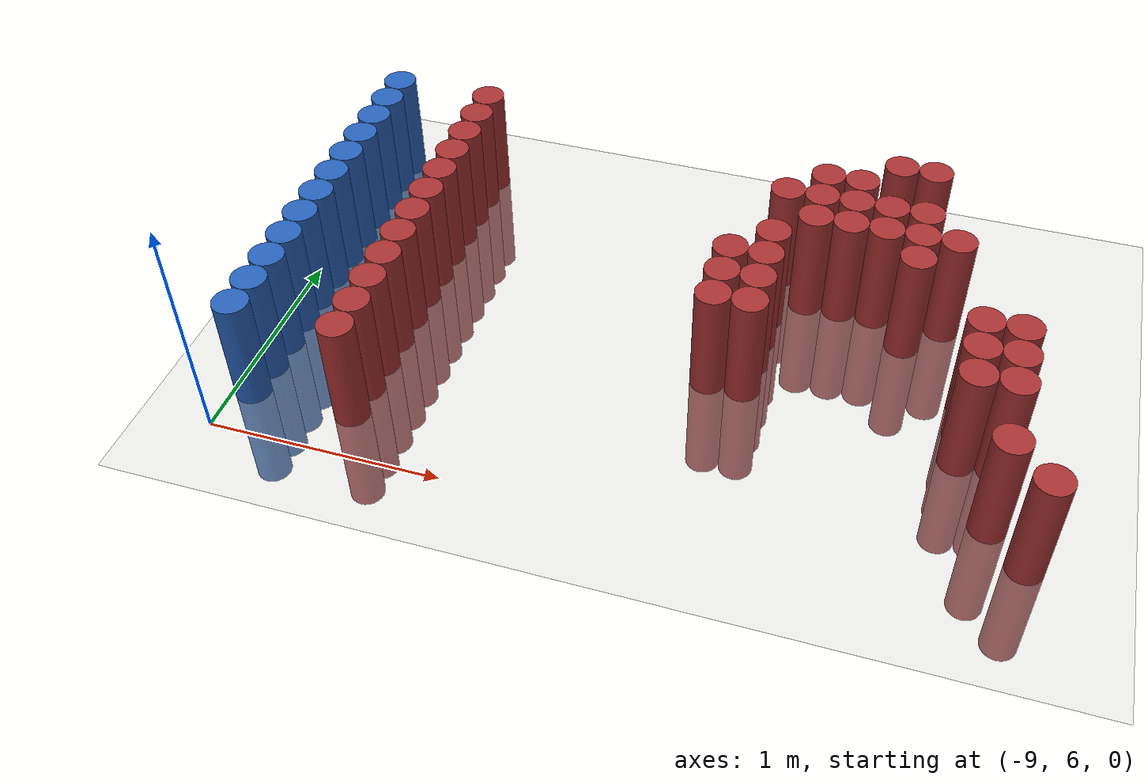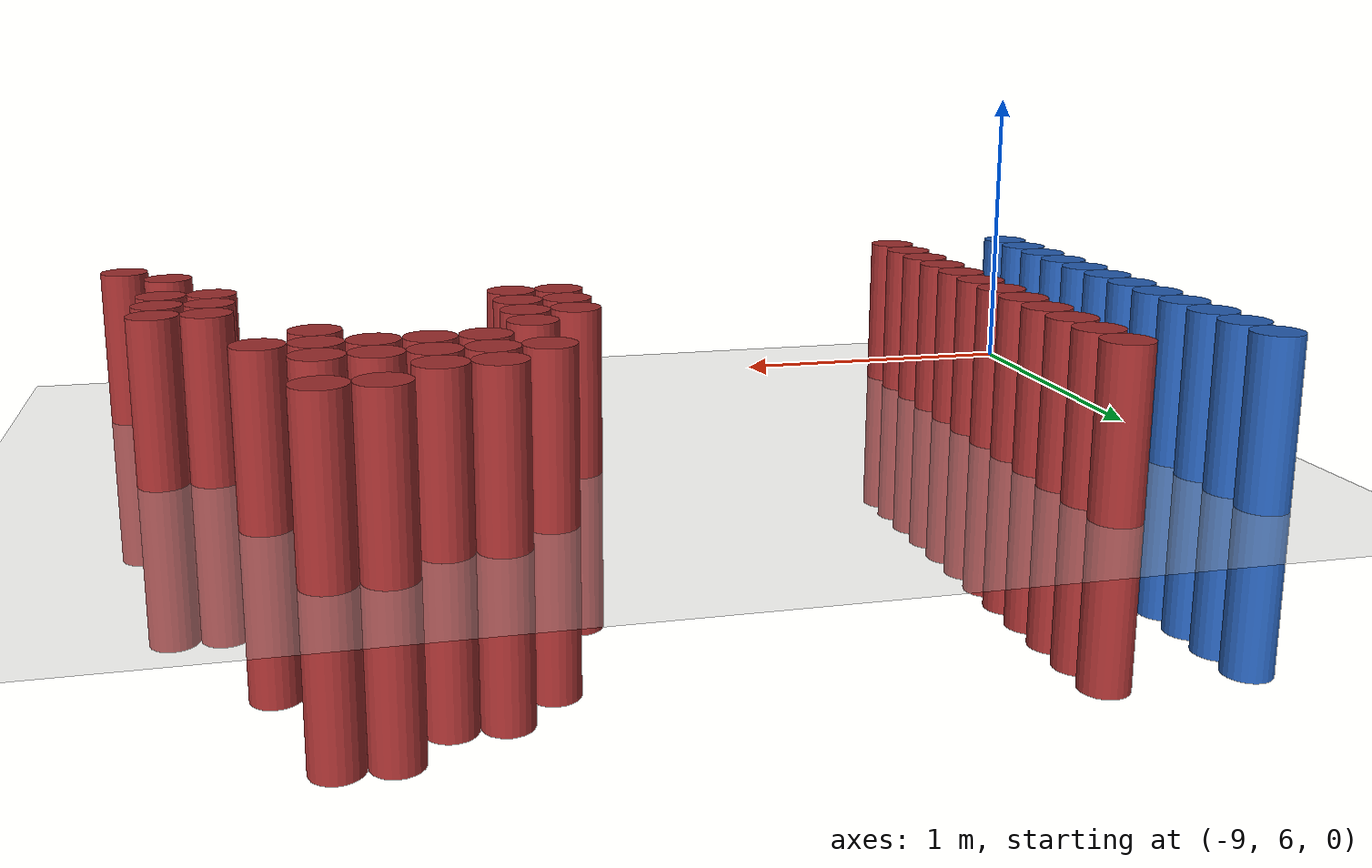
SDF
<sdf version="1.6">
 <world name="default">
  <model name="ground_plane">
   <static>1</static>
   <link name="link">
    <collision name="collision">
     <geometry><plane><normal>0 0 1</normal><size>100 100</size></plane></geometry>
     <surface><friction><ode><mu>100</mu><mu2>50</mu2></ode></friction></surface>
    </collision>
    <visual name="visual">
     <cast_shadows>0</cast_shadows>
     <geometry><plane><normal>0 0 1</normal><size>100 100</size></plane></geometry>
     <material>
      <script><uri>file://media/materials/scripts/gazebo.material</uri><name>Gazebo/Grey</name></script>
     </material>
    </visual>
   </link>
  </model>
  <model name="unit_cylinder_132">
   <static>1</static>
   <pose>-8.925000 6.225000 0.000000 0.000000 0.000000 0.000000</pose>
   <link name="link">
    <inertial>
     <mass>1</mass>
     <inertia><ixx>0.145833</ixx><ixy>0</ixy><ixz>0</ixz><iyy>0.145833</iyy><iyz>0</iyz><izz>0.125</izz></inertia>
    </inertial>
    <collision name="collision">
     <geometry><cylinder><radius>0.075000</radius><length>1</length></cylinder></geometry>
    </collision>
    <visual name="visual">
     <geometry><cylinder><radius>0.075000</radius><length>1</length></cylinder></geometry>
     <material>
      <ambient>0.152000 0.379000 0.720000 1</ambient>
      <diffuse>0.152000 0.379000 0.720000 1</diffuse>
     </material>
     <material>
      <script><name>Gazebo/Grey</name><uri>file://media/materials/scripts/gazebo.material</uri></script>
     </material>
    </visual>
   </link>
  </model>
  <model name="unit_cylinder_133">
   <static>1</static>
   <pose>-8.925000 6.375000 0.000000 0.000000 0.000000 0.000000</pose>
   <link name="link">
    <inertial>
     <mass>1</mass>
     <inertia><ixx>0.145833</ixx><ixy>0</ixy><ixz>0</ixz><iyy>0.145833</iyy><iyz>0</iyz><izz>0.125</izz></inertia>
    </inertial>
    <collision name="collision">
     <geometry><cylinder><radius>0.075000</radius><length>1</length></cylinder></geometry>
    </collision>
    <visual name="visual">
     <geometry><cylinder><radius>0.075000</radius><length>1</length></cylinder></geometry>
     <material>
      <ambient>0.152000 0.379000 0.720000 1</ambient>
      <diffuse>0.152000 0.379000 0.720000 1</diffuse>
     </material>
     <material>
      <script><name>Gazebo/Grey</name><uri>file://media/materials/scripts/gazebo.material</uri></script>
     </material>
    </visual>
   </link>
  </model>
  <model name="unit_cylinder_134">
   <static>1</static>
   <pose>-8.925000 6.525000 0.000000 0.000000 0.000000 0.000000</pose>
   <link name="link">
    <inertial>
     <mass>1</mass>
     <inertia><ixx>0.145833</ixx><ixy>0</ixy><ixz>0</ixz><iyy>0.145833</iyy><iyz>0</iyz><izz>0.125</izz></inertia>
    </inertial>
    <collision name="collision">
     <geometry><cylinder><radius>0.075000</radius><length>1</length></cylinder></geometry>
    </collision>
    <visual name="visual">
     <geometry><cylinder><radius>0.075000</radius><length>1</length></cylinder></geometry>
     <material>
      <ambient>0.152000 0.379000 0.720000 1</ambient>
      <diffuse>0.152000 0.379000 0.720000 1</diffuse>
     </material>
     <material>
      <script><name>Gazebo/Grey</name><uri>file://media/materials/scripts/gazebo.material</uri></script>
     </material>
    </visual>
   </link>
  </model>
  <model name="unit_cylinder_135">
   <static>1</static>
   <pose>-8.925000 6.675000 0.000000 0.000000 0.000000 0.000000</pose>
   <link name="link">
    <inertial>
     <mass>1</mass>
     <inertia><ixx>0.145833</ixx><ixy>0</ixy><ixz>0</ixz><iyy>0.145833</iyy><iyz>0</iyz><izz>0.125</izz></inertia>
    </inertial>
    <collision name="collision">
     <geometry><cylinder><radius>0.075000</radius><length>1</length></cylinder></geometry>
    </collision>
    <visual name="visual">
     <geometry><cylinder><radius>0.075000</radius><length>1</length></cylinder></geometry>
     <material>
      <ambient>0.152000 0.379000 0.720000 1</ambient>
      <diffuse>0.152000 0.379000 0.720000 1</diffuse>
     </material>
     <material>
      <script><name>Gazebo/Grey</name><uri>file://media/materials/scripts/gazebo.material</uri></script>
     </material>
    </visual>
   </link>
  </model>
  <model name="unit_cylinder_136">
   <static>1</static>
   <pose>-8.925000 6.825000 0.000000 0.000000 0.000000 0.000000</pose>
   <link name="link">
    <inertial>
     <mass>1</mass>
     <inertia><ixx>0.145833</ixx><ixy>0</ixy><ixz>0</ixz><iyy>0.145833</iyy><iyz>0</iyz><izz>0.125</izz></inertia>
    </inertial>
    <collision name="collision">
     <geometry><cylinder><radius>0.075000</radius><length>1</length></cylinder></geometry>
    </collision>
    <visual name="visual">
     <geometry><cylinder><radius>0.075000</radius><length>1</length></cylinder></geometry>
     <material>
      <ambient>0.152000 0.379000 0.720000 1</ambient>
      <diffuse>0.152000 0.379000 0.720000 1</diffuse>
     </material>
     <material>
      <script><name>Gazebo/Grey</name><uri>file://media/materials/scripts/gazebo.material</uri></script>
     </material>
    </visual>
   </link>
  </model>
  <model name="unit_cylinder_137">
   <static>1</static>
   <pose>-8.925000 6.975000 0.000000 0.000000 0.000000 0.000000</pose>
   <link name="link">
    <inertial>
     <mass>1</mass>
     <inertia><ixx>0.145833</ixx><ixy>0</ixy><ixz>0</ixz><iyy>0.145833</iyy><iyz>0</iyz><izz>0.125</izz></inertia>
    </inertial>
    <collision name="collision">
     <geometry><cylinder><radius>0.075000</radius><length>1</length></cylinder></geometry>
    </collision>
    <visual name="visual">
     <geometry><cylinder><radius>0.075000</radius><length>1</length></cylinder></geometry>
     <material>
      <ambient>0.152000 0.379000 0.720000 1</ambient>
      <diffuse>0.152000 0.379000 0.720000 1</diffuse>
     </material>
     <material>
      <script><name>Gazebo/Grey</name><uri>file://media/materials/scripts/gazebo.material</uri></script>
     </material>
    </visual>
   </link>
  </model>
  <model name="unit_cylinder_138">
   <static>1</static>
   <pose>-8.925000 7.125000 0.000000 0.000000 0.000000 0.000000</pose>
   <link name="link">
    <inertial>
     <mass>1</mass>
     <inertia><ixx>0.145833</ixx><ixy>0</ixy><ixz>0</ixz><iyy>0.145833</iyy><iyz>0</iyz><izz>0.125</izz></inertia>
    </inertial>
    <collision name="collision">
     <geometry><cylinder><radius>0.075000</radius><length>1</length></cylinder></geometry>
    </collision>
    <visual name="visual">
     <geometry><cylinder><radius>0.075000</radius><length>1</length></cylinder></geometry>
     <material>
      <ambient>0.152000 0.379000 0.720000 1</ambient>
      <diffuse>0.152000 0.379000 0.720000 1</diffuse>
     </material>
     <material>
      <script><name>Gazebo/Grey</name><uri>file://media/materials/scripts/gazebo.material</uri></script>
     </material>
    </visual>
   </link>
  </model>
  <model name="unit_cylinder_139">
   <static>1</static>
   <pose>-8.925000 7.275000 0.000000 0.000000 0.000000 0.000000</pose>
   <link name="link">
    <inertial>
     <mass>1</mass>
     <inertia><ixx>0.145833</ixx><ixy>0</ixy><ixz>0</ixz><iyy>0.145833</iyy><iyz>0</iyz><izz>0.125</izz></inertia>
    </inertial>
    <collision name="collision">
     <geometry><cylinder><radius>0.075000</radius><length>1</length></cylinder></geometry>
    </collision>
    <visual name="visual">
     <geometry><cylinder><radius>0.075000</radius><length>1</length></cylinder></geometry>
     <material>
      <ambient>0.152000 0.379000 0.720000 1</ambient>
      <diffuse>0.152000 0.379000 0.720000 1</diffuse>
     </material>
     <material>
      <script><name>Gazebo/Grey</name><uri>file://media/materials/scripts/gazebo.material</uri></script>
     </material>
    </visual>
   </link>
  </model>
  <model name="unit_cylinder_140">
   <static>1</static>
   <pose>-8.925000 7.425000 0.000000 0.000000 0.000000 0.000000</pose>
   <link name="link">
    <inertial>
     <mass>1</mass>
     <inertia><ixx>0.145833</ixx><ixy>0</ixy><ixz>0</ixz><iyy>0.145833</iyy><iyz>0</iyz><izz>0.125</izz></inertia>
    </inertial>
    <collision name="collision">
     <geometry><cylinder><radius>0.075000</radius><length>1</length></cylinder></geometry>
    </collision>
    <visual name="visual">
     <geometry><cylinder><radius>0.075000</radius><length>1</length></cylinder></geometry>
     <material>
      <ambient>0.152000 0.379000 0.720000 1</ambient>
      <diffuse>0.152000 0.379000 0.720000 1</diffuse>
     </material>
     <material>
      <script><name>Gazebo/Grey</name><uri>file://media/materials/scripts/gazebo.material</uri></script>
     </material>
    </visual>
   </link>
  </model>
  <model name="unit_cylinder_141">
   <static>1</static>
   <pose>-8.925000 7.575000 0.000000 0.000000 0.000000 0.000000</pose>
   <link name="link">
    <inertial>
     <mass>1</mass>
     <inertia><ixx>0.145833</ixx><ixy>0</ixy><ixz>0</ixz><iyy>0.145833</iyy><iyz>0</iyz><izz>0.125</izz></inertia>
    </inertial>
    <collision name="collision">
     <geometry><cylinder><radius>0.075000</radius><length>1</length></cylinder></geometry>
    </collision>
    <visual name="visual">
     <geometry><cylinder><radius>0.075000</radius><length>1</length></cylinder></geometry>
     <material>
      <ambient>0.152000 0.379000 0.720000 1</ambient>
      <diffuse>0.152000 0.379000 0.720000 1</diffuse>
     </material>
     <material>
      <script><name>Gazebo/Grey</name><uri>file://media/materials/scripts/gazebo.material</uri></script>
     </material>
    </visual>
   </link>
  </model>
  <model name="unit_cylinder_142">
   <static>1</static>
   <pose>-8.925000 7.725000 0.000000 0.000000 0.000000 0.000000</pose>
   <link name="link">
    <inertial>
     <mass>1</mass>
     <inertia><ixx>0.145833</ixx><ixy>0</ixy><ixz>0</ixz><iyy>0.145833</iyy><iyz>0</iyz><izz>0.125</izz></inertia>
    </inertial>
    <collision name="collision">
     <geometry><cylinder><radius>0.075000</radius><length>1</length></cylinder></geometry>
    </collision>
    <visual name="visual">
     <geometry><cylinder><radius>0.075000</radius><length>1</length></cylinder></geometry>
     <material>
      <ambient>0.152000 0.379000 0.720000 1</ambient>
      <diffuse>0.152000 0.379000 0.720000 1</diffuse>
     </material>
     <material>
      <script><name>Gazebo/Grey</name><uri>file://media/materials/scripts/gazebo.material</uri></script>
     </material>
    </visual>
   </link>
  </model>
  <model name="unit_cylinder_143">
   <static>1</static>
   <pose>-8.925000 7.875000 0.000000 0.000000 0.000000 0.000000</pose>
   <link name="link">
    <inertial>
     <mass>1</mass>
     <inertia><ixx>0.145833</ixx><ixy>0</ixy><ixz>0</ixz><iyy>0.145833</iyy><iyz>0</iyz><izz>0.125</izz></inertia>
    </inertial>
    <collision name="collision">
     <geometry><cylinder><radius>0.075000</radius><length>1</length></cylinder></geometry>
    </collision>
    <visual name="visual">
     <geometry><cylinder><radius>0.075000</radius><length>1</length></cylinder></geometry>
     <material>
      <ambient>0.152000 0.379000 0.720000 1</ambient>
      <diffuse>0.152000 0.379000 0.720000 1</diffuse>
     </material>
     <material>
      <script><name>Gazebo/Grey</name><uri>file://media/materials/scripts/gazebo.material</uri></script>
     </material>
    </visual>
   </link>
  </model>
  <model name="unit_cylinder_165">
   <static>1</static>
   <pose>-8.475000 6.225000 0.000000 0.000000 0.000000 0.000000</pose>
   <link name="link">
    <inertial>
     <mass>1</mass>
     <inertia><ixx>0.145833</ixx><ixy>0</ixy><ixz>0</ixz><iyy>0.145833</iyy><iyz>0</iyz><izz>0.125</izz></inertia>
    </inertial>
    <collision name="collision">
     <geometry><cylinder><radius>0.075000</radius><length>1</length></cylinder></geometry>
    </collision>
    <visual name="visual">
     <geometry><cylinder><radius>0.075000</radius><length>1</length></cylinder></geometry>
     <material>
      <ambient>0.648000 0.192000 0.192000 1</ambient>
      <diffuse>0.648000 0.192000 0.192000 1</diffuse>
     </material>
     <material>
      <script><name>Gazebo/Grey</name><uri>file://media/materials/scripts/gazebo.material</uri></script>
     </material>
    </visual>
   </link>
  </model>
  <model name="unit_cylinder_166">
   <static>1</static>
   <pose>-8.475000 6.375000 0.000000 0.000000 0.000000 0.000000</pose>
   <link name="link">
    <inertial>
     <mass>1</mass>
     <inertia><ixx>0.145833</ixx><ixy>0</ixy><ixz>0</ixz><iyy>0.145833</iyy><iyz>0</iyz><izz>0.125</izz></inertia>
    </inertial>
    <collision name="collision">
     <geometry><cylinder><radius>0.075000</radius><length>1</length></cylinder></geometry>
    </collision>
    <visual name="visual">
     <geometry><cylinder><radius>0.075000</radius><length>1</length></cylinder></geometry>
     <material>
      <ambient>0.648000 0.192000 0.192000 1</ambient>
      <diffuse>0.648000 0.192000 0.192000 1</diffuse>
     </material>
     <material>
      <script><name>Gazebo/Grey</name><uri>file://media/materials/scripts/gazebo.material</uri></script>
     </material>
    </visual>
   </link>
  </model>
  <model name="unit_cylinder_167">
   <static>1</static>
   <pose>-8.475000 6.525000 0.000000 0.000000 0.000000 0.000000</pose>
   <link name="link">
    <inertial>
     <mass>1</mass>
     <inertia><ixx>0.145833</ixx><ixy>0</ixy><ixz>0</ixz><iyy>0.145833</iyy><iyz>0</iyz><izz>0.125</izz></inertia>
    </inertial>
    <collision name="collision">
     <geometry><cylinder><radius>0.075000</radius><length>1</length></cylinder></geometry>
    </collision>
    <visual name="visual">
     <geometry><cylinder><radius>0.075000</radius><length>1</length></cylinder></geometry>
     <material>
      <ambient>0.648000 0.192000 0.192000 1</ambient>
      <diffuse>0.648000 0.192000 0.192000 1</diffuse>
     </material>
     <material>
      <script><name>Gazebo/Grey</name><uri>file://media/materials/scripts/gazebo.material</uri></script>
     </material>
    </visual>
   </link>
  </model>
  <model name="unit_cylinder_168">
   <static>1</static>
   <pose>-8.475000 6.675000 0.000000 0.000000 0.000000 0.000000</pose>
   <link name="link">
    <inertial>
     <mass>1</mass>
     <inertia><ixx>0.145833</ixx><ixy>0</ixy><ixz>0</ixz><iyy>0.145833</iyy><iyz>0</iyz><izz>0.125</izz></inertia>
    </inertial>
    <collision name="collision">
     <geometry><cylinder><radius>0.075000</radius><length>1</length></cylinder></geometry>
    </collision>
    <visual name="visual">
     <geometry><cylinder><radius>0.075000</radius><length>1</length></cylinder></geometry>
     <material>
      <ambient>0.648000 0.192000 0.192000 1</ambient>
      <diffuse>0.648000 0.192000 0.192000 1</diffuse>
     </material>
     <material>
      <script><name>Gazebo/Grey</name><uri>file://media/materials/scripts/gazebo.material</uri></script>
     </material>
    </visual>
   </link>
  </model>
  <model name="unit_cylinder_169">
   <static>1</static>
   <pose>-8.475000 6.825000 0.000000 0.000000 0.000000 0.000000</pose>
   <link name="link">
    <inertial>
     <mass>1</mass>
     <inertia><ixx>0.145833</ixx><ixy>0</ixy><ixz>0</ixz><iyy>0.145833</iyy><iyz>0</iyz><izz>0.125</izz></inertia>
    </inertial>
    <collision name="collision">
     <geometry><cylinder><radius>0.075000</radius><length>1</length></cylinder></geometry>
    </collision>
    <visual name="visual">
     <geometry><cylinder><radius>0.075000</radius><length>1</length></cylinder></geometry>
     <material>
      <ambient>0.648000 0.192000 0.192000 1</ambient>
      <diffuse>0.648000 0.192000 0.192000 1</diffuse>
     </material>
     <material>
      <script><name>Gazebo/Grey</name><uri>file://media/materials/scripts/gazebo.material</uri></script>
     </material>
    </visual>
   </link>
  </model>
  <model name="unit_cylinder_170">
   <static>1</static>
   <pose>-8.475000 6.975000 0.000000 0.000000 0.000000 0.000000</pose>
   <link name="link">
    <inertial>
     <mass>1</mass>
     <inertia><ixx>0.145833</ixx><ixy>0</ixy><ixz>0</ixz><iyy>0.145833</iyy><iyz>0</iyz><izz>0.125</izz></inertia>
    </inertial>
    <collision name="collision">
     <geometry><cylinder><radius>0.075000</radius><length>1</length></cylinder></geometry>
    </collision>
    <visual name="visual">
     <geometry><cylinder><radius>0.075000</radius><length>1</length></cylinder></geometry>
     <material>
      <ambient>0.648000 0.192000 0.192000 1</ambient>
      <diffuse>0.648000 0.192000 0.192000 1</diffuse>
     </material>
     <material>
      <script><name>Gazebo/Grey</name><uri>file://media/materials/scripts/gazebo.material</uri></script>
     </material>
    </visual>
   </link>
  </model>
  <model name="unit_cylinder_171">
   <static>1</static>
   <pose>-8.475000 7.125000 0.000000 0.000000 0.000000 0.000000</pose>
   <link name="link">
    <inertial>
     <mass>1</mass>
     <inertia><ixx>0.145833</ixx><ixy>0</ixy><ixz>0</ixz><iyy>0.145833</iyy><iyz>0</iyz><izz>0.125</izz></inertia>
    </inertial>
    <collision name="collision">
     <geometry><cylinder><radius>0.075000</radius><length>1</length></cylinder></geometry>
    </collision>
    <visual name="visual">
     <geometry><cylinder><radius>0.075000</radius><length>1</length></cylinder></geometry>
     <material>
      <ambient>0.648000 0.192000 0.192000 1</ambient>
      <diffuse>0.648000 0.192000 0.192000 1</diffuse>
     </material>
     <material>
      <script><name>Gazebo/Grey</name><uri>file://media/materials/scripts/gazebo.material</uri></script>
     </material>
    </visual>
   </link>
  </model>
  <model name="unit_cylinder_172">
   <static>1</static>
   <pose>-8.475000 7.275000 0.000000 0.000000 0.000000 0.000000</pose>
   <link name="link">
    <inertial>
     <mass>1</mass>
     <inertia><ixx>0.145833</ixx><ixy>0</ixy><ixz>0</ixz><iyy>0.145833</iyy><iyz>0</iyz><izz>0.125</izz></inertia>
    </inertial>
    <collision name="collision">
     <geometry><cylinder><radius>0.075000</radius><length>1</length></cylinder></geometry>
    </collision>
    <visual name="visual">
     <geometry><cylinder><radius>0.075000</radius><length>1</length></cylinder></geometry>
     <material>
      <ambient>0.648000 0.192000 0.192000 1</ambient>
      <diffuse>0.648000 0.192000 0.192000 1</diffuse>
     </material>
     <material>
      <script><name>Gazebo/Grey</name><uri>file://media/materials/scripts/gazebo.material</uri></script>
     </material>
    </visual>
   </link>
  </model>
  <model name="unit_cylinder_173">
   <static>1</static>
   <pose>-8.475000 7.425000 0.000000 0.000000 0.000000 0.000000</pose>
   <link name="link">
    <inertial>
     <mass>1</mass>
     <inertia><ixx>0.145833</ixx><ixy>0</ixy><ixz>0</ixz><iyy>0.145833</iyy><iyz>0</iyz><izz>0.125</izz></inertia>
    </inertial>
    <collision name="collision">
     <geometry><cylinder><radius>0.075000</radius><length>1</length></cylinder></geometry>
    </collision>
    <visual name="visual">
     <geometry><cylinder><radius>0.075000</radius><length>1</length></cylinder></geometry>
     <material>
      <ambient>0.648000 0.192000 0.192000 1</ambient>
      <diffuse>0.648000 0.192000 0.192000 1</diffuse>
     </material>
     <material>
      <script><name>Gazebo/Grey</name><uri>file://media/materials/scripts/gazebo.material</uri></script>
     </material>
    </visual>
   </link>
  </model>
  <model name="unit_cylinder_174">
   <static>1</static>
   <pose>-8.475000 7.575000 0.000000 0.000000 0.000000 0.000000</pose>
   <link name="link">
    <inertial>
     <mass>1</mass>
     <inertia><ixx>0.145833</ixx><ixy>0</ixy><ixz>0</ixz><iyy>0.145833</iyy><iyz>0</iyz><izz>0.125</izz></inertia>
    </inertial>
    <collision name="collision">
     <geometry><cylinder><radius>0.075000</radius><length>1</length></cylinder></geometry>
    </collision>
    <visual name="visual">
     <geometry><cylinder><radius>0.075000</radius><length>1</length></cylinder></geometry>
     <material>
      <ambient>0.648000 0.192000 0.192000 1</ambient>
      <diffuse>0.648000 0.192000 0.192000 1</diffuse>
     </material>
     <material>
      <script><name>Gazebo/Grey</name><uri>file://media/materials/scripts/gazebo.material</uri></script>
     </material>
    </visual>
   </link>
  </model>
  <model name="unit_cylinder_175">
   <static>1</static>
   <pose>-8.475000 7.725000 0.000000 0.000000 0.000000 0.000000</pose>
   <link name="link">
    <inertial>
     <mass>1</mass>
     <inertia><ixx>0.145833</ixx><ixy>0</ixy><ixz>0</ixz><iyy>0.145833</iyy><iyz>0</iyz><izz>0.125</izz></inertia>
    </inertial>
    <collision name="collision">
     <geometry><cylinder><radius>0.075000</radius><length>1</length></cylinder></geometry>
    </collision>
    <visual name="visual">
     <geometry><cylinder><radius>0.075000</radius><length>1</length></cylinder></geometry>
     <material>
      <ambient>0.648000 0.192000 0.192000 1</ambient>
      <diffuse>0.648000 0.192000 0.192000 1</diffuse>
     </material>
     <material>
      <script><name>Gazebo/Grey</name><uri>file://media/materials/scripts/gazebo.material</uri></script>
     </material>
    </visual>
   </link>
  </model>
  <model name="unit_cylinder_176">
   <static>1</static>
   <pose>-8.475000 7.875000 0.000000 0.000000 0.000000 0.000000</pose>
   <link name="link">
    <inertial>
     <mass>1</mass>
     <inertia><ixx>0.145833</ixx><ixy>0</ixy><ixz>0</ixz><iyy>0.145833</iyy><iyz>0</iyz><izz>0.125</izz></inertia>
    </inertial>
    <collision name="collision">
     <geometry><cylinder><radius>0.075000</radius><length>1</length></cylinder></geometry>
    </collision>
    <visual name="visual">
     <geometry><cylinder><radius>0.075000</radius><length>1</length></cylinder></geometry>
     <material>
      <ambient>0.648000 0.192000 0.192000 1</ambient>
      <diffuse>0.648000 0.192000 0.192000 1</diffuse>
     </material>
     <material>
      <script><name>Gazebo/Grey</name><uri>file://media/materials/scripts/gazebo.material</uri></script>
     </material>
    </visual>
   </link>
  </model>
  <model name="unit_cylinder_205">
   <static>1</static>
   <pose>-7.125000 6.825000 0.000000 0.000000 0.000000 0.000000</pose>
   <link name="link">
    <inertial>
     <mass>1</mass>
     <inertia><ixx>0.145833</ixx><ixy>0</ixy><ixz>0</ixz><iyy>0.145833</iyy><iyz>0</iyz><izz>0.125</izz></inertia>
    </inertial>
    <collision name="collision">
     <geometry><cylinder><radius>0.075000</radius><length>1</length></cylinder></geometry>
    </collision>
    <visual name="visual">
     <geometry><cylinder><radius>0.075000</radius><length>1</length></cylinder></geometry>
     <material>
      <ambient>0.648000 0.192000 0.192000 1</ambient>
      <diffuse>0.648000 0.192000 0.192000 1</diffuse>
     </material>
     <material>
      <script><name>Gazebo/Grey</name><uri>file://media/materials/scripts/gazebo.material</uri></script>
     </material>
    </visual>
   </link>
  </model>
  <model name="unit_cylinder_206">
   <static>1</static>
   <pose>-7.125000 6.975000 0.000000 0.000000 0.000000 0.000000</pose>
   <link name="link">
    <inertial>
     <mass>1</mass>
     <inertia><ixx>0.145833</ixx><ixy>0</ixy><ixz>0</ixz><iyy>0.145833</iyy><iyz>0</iyz><izz>0.125</izz></inertia>
    </inertial>
    <collision name="collision">
     <geometry><cylinder><radius>0.075000</radius><length>1</length></cylinder></geometry>
    </collision>
    <visual name="visual">
     <geometry><cylinder><radius>0.075000</radius><length>1</length></cylinder></geometry>
     <material>
      <ambient>0.648000 0.192000 0.192000 1</ambient>
      <diffuse>0.648000 0.192000 0.192000 1</diffuse>
     </material>
     <material>
      <script><name>Gazebo/Grey</name><uri>file://media/materials/scripts/gazebo.material</uri></script>
     </material>
    </visual>
   </link>
  </model>
  <model name="unit_cylinder_207">
   <static>1</static>
   <pose>-7.125000 7.125000 0.000000 0.000000 0.000000 0.000000</pose>
   <link name="link">
    <inertial>
     <mass>1</mass>
     <inertia><ixx>0.145833</ixx><ixy>0</ixy><ixz>0</ixz><iyy>0.145833</iyy><iyz>0</iyz><izz>0.125</izz></inertia>
    </inertial>
    <collision name="collision">
     <geometry><cylinder><radius>0.075000</radius><length>1</length></cylinder></geometry>
    </collision>
    <visual name="visual">
     <geometry><cylinder><radius>0.075000</radius><length>1</length></cylinder></geometry>
     <material>
      <ambient>0.648000 0.192000 0.192000 1</ambient>
      <diffuse>0.648000 0.192000 0.192000 1</diffuse>
     </material>
     <material>
      <script><name>Gazebo/Grey</name><uri>file://media/materials/scripts/gazebo.material</uri></script>
     </material>
    </visual>
   </link>
  </model>
  <model name="unit_cylinder_210">
   <static>1</static>
   <pose>-6.975000 6.825000 0.000000 0.000000 0.000000 0.000000</pose>
   <link name="link">
    <inertial>
     <mass>1</mass>
     <inertia><ixx>0.145833</ixx><ixy>0</ixy><ixz>0</ixz><iyy>0.145833</iyy><iyz>0</iyz><izz>0.125</izz></inertia>
    </inertial>
    <collision name="collision">
     <geometry><cylinder><radius>0.075000</radius><length>1</length></cylinder></geometry>
    </collision>
    <visual name="visual">
     <geometry><cylinder><radius>0.075000</radius><length>1</length></cylinder></geometry>
     <material>
      <ambient>0.648000 0.192000 0.192000 1</ambient>
      <diffuse>0.648000 0.192000 0.192000 1</diffuse>
     </material>
     <material>
      <script><name>Gazebo/Grey</name><uri>file://media/materials/scripts/gazebo.material</uri></script>
     </material>
    </visual>
   </link>
  </model>
  <model name="unit_cylinder_211">
   <static>1</static>
   <pose>-6.975000 6.975000 0.000000 0.000000 0.000000 0.000000</pose>
   <link name="link">
    <inertial>
     <mass>1</mass>
     <inertia><ixx>0.145833</ixx><ixy>0</ixy><ixz>0</ixz><iyy>0.145833</iyy><iyz>0</iyz><izz>0.125</izz></inertia>
    </inertial>
    <collision name="collision">
     <geometry><cylinder><radius>0.075000</radius><length>1</length></cylinder></geometry>
    </collision>
    <visual name="visual">
     <geometry><cylinder><radius>0.075000</radius><length>1</length></cylinder></geometry>
     <material>
      <ambient>0.648000 0.192000 0.192000 1</ambient>
      <diffuse>0.648000 0.192000 0.192000 1</diffuse>
     </material>
     <material>
      <script><name>Gazebo/Grey</name><uri>file://media/materials/scripts/gazebo.material</uri></script>
     </material>
    </visual>
   </link>
  </model>
  <model name="unit_cylinder_212">
   <static>1</static>
   <pose>-6.975000 7.125000 0.000000 0.000000 0.000000 0.000000</pose>
   <link name="link">
    <inertial>
     <mass>1</mass>
     <inertia><ixx>0.145833</ixx><ixy>0</ixy><ixz>0</ixz><iyy>0.145833</iyy><iyz>0</iyz><izz>0.125</izz></inertia>
    </inertial>
    <collision name="collision">
     <geometry><cylinder><radius>0.075000</radius><length>1</length></cylinder></geometry>
    </collision>
    <visual name="visual">
     <geometry><cylinder><radius>0.075000</radius><length>1</length></cylinder></geometry>
     <material>
      <ambient>0.648000 0.192000 0.192000 1</ambient>
      <diffuse>0.648000 0.192000 0.192000 1</diffuse>
     </material>
     <material>
      <script><name>Gazebo/Grey</name><uri>file://media/materials/scripts/gazebo.material</uri></script>
     </material>
    </visual>
   </link>
  </model>
  <model name="unit_cylinder_213">
   <static>1</static>
   <pose>-6.975000 7.275000 0.000000 0.000000 0.000000 0.000000</pose>
   <link name="link">
    <inertial>
     <mass>1</mass>
     <inertia><ixx>0.145833</ixx><ixy>0</ixy><ixz>0</ixz><iyy>0.145833</iyy><iyz>0</iyz><izz>0.125</izz></inertia>
    </inertial>
    <collision name="collision">
     <geometry><cylinder><radius>0.075000</radius><length>1</length></cylinder></geometry>
    </collision>
    <visual name="visual">
     <geometry><cylinder><radius>0.075000</radius><length>1</length></cylinder></geometry>
     <material>
      <ambient>0.648000 0.192000 0.192000 1</ambient>
      <diffuse>0.648000 0.192000 0.192000 1</diffuse>
     </material>
     <material>
      <script><name>Gazebo/Grey</name><uri>file://media/materials/scripts/gazebo.material</uri></script>
     </material>
    </visual>
   </link>
  </model>
  <model name="unit_cylinder_214">
   <static>1</static>
   <pose>-6.975000 7.575000 0.000000 0.000000 0.000000 0.000000</pose>
   <link name="link">
    <inertial>
     <mass>1</mass>
     <inertia><ixx>0.145833</ixx><ixy>0</ixy><ixz>0</ixz><iyy>0.145833</iyy><iyz>0</iyz><izz>0.125</izz></inertia>
    </inertial>
    <collision name="collision">
     <geometry><cylinder><radius>0.075000</radius><length>1</length></cylinder></geometry>
    </collision>
    <visual name="visual">
     <geometry><cylinder><radius>0.075000</radius><length>1</length></cylinder></geometry>
     <material>
      <ambient>0.648000 0.192000 0.192000 1</ambient>
      <diffuse>0.648000 0.192000 0.192000 1</diffuse>
     </material>
     <material>
      <script><name>Gazebo/Grey</name><uri>file://media/materials/scripts/gazebo.material</uri></script>
     </material>
    </visual>
   </link>
  </model>
  <model name="unit_cylinder_221">
   <static>1</static>
   <pose>-6.825000 7.425000 0.000000 0.000000 0.000000 0.000000</pose>
   <link name="link">
    <inertial>
     <mass>1</mass>
     <inertia><ixx>0.145833</ixx><ixy>0</ixy><ixz>0</ixz><iyy>0.145833</iyy><iyz>0</iyz><izz>0.125</izz></inertia>
    </inertial>
    <collision name="collision">
     <geometry><cylinder><radius>0.075000</radius><length>1</length></cylinder></geometry>
    </collision>
    <visual name="visual">
     <geometry><cylinder><radius>0.075000</radius><length>1</length></cylinder></geometry>
     <material>
      <ambient>0.648000 0.192000 0.192000 1</ambient>
      <diffuse>0.648000 0.192000 0.192000 1</diffuse>
     </material>
     <material>
      <script><name>Gazebo/Grey</name><uri>file://media/materials/scripts/gazebo.material</uri></script>
     </material>
    </visual>
   </link>
  </model>
  <model name="unit_cylinder_222">
   <static>1</static>
   <pose>-6.825000 7.575000 0.000000 0.000000 0.000000 0.000000</pose>
   <link name="link">
    <inertial>
     <mass>1</mass>
     <inertia><ixx>0.145833</ixx><ixy>0</ixy><ixz>0</ixz><iyy>0.145833</iyy><iyz>0</iyz><izz>0.125</izz></inertia>
    </inertial>
    <collision name="collision">
     <geometry><cylinder><radius>0.075000</radius><length>1</length></cylinder></geometry>
    </collision>
    <visual name="visual">
     <geometry><cylinder><radius>0.075000</radius><length>1</length></cylinder></geometry>
     <material>
      <ambient>0.648000 0.192000 0.192000 1</ambient>
      <diffuse>0.648000 0.192000 0.192000 1</diffuse>
     </material>
     <material>
      <script><name>Gazebo/Grey</name><uri>file://media/materials/scripts/gazebo.material</uri></script>
     </material>
    </visual>
   </link>
  </model>
  <model name="unit_cylinder_223">
   <static>1</static>
   <pose>-6.825000 7.725000 0.000000 0.000000 0.000000 0.000000</pose>
   <link name="link">
    <inertial>
     <mass>1</mass>
     <inertia><ixx>0.145833</ixx><ixy>0</ixy><ixz>0</ixz><iyy>0.145833</iyy><iyz>0</iyz><izz>0.125</izz></inertia>
    </inertial>
    <collision name="collision">
     <geometry><cylinder><radius>0.075000</radius><length>1</length></cylinder></geometry>
    </collision>
    <visual name="visual">
     <geometry><cylinder><radius>0.075000</radius><length>1</length></cylinder></geometry>
     <material>
      <ambient>0.648000 0.192000 0.192000 1</ambient>
      <diffuse>0.648000 0.192000 0.192000 1</diffuse>
     </material>
     <material>
      <script><name>Gazebo/Grey</name><uri>file://media/materials/scripts/gazebo.material</uri></script>
     </material>
    </visual>
   </link>
  </model>
  <model name="unit_cylinder_230">
   <static>1</static>
   <pose>-6.675000 7.425000 0.000000 0.000000 0.000000 0.000000</pose>
   <link name="link">
    <inertial>
     <mass>1</mass>
     <inertia><ixx>0.145833</ixx><ixy>0</ixy><ixz>0</ixz><iyy>0.145833</iyy><iyz>0</iyz><izz>0.125</izz></inertia>
    </inertial>
    <collision name="collision">
     <geometry><cylinder><radius>0.075000</radius><length>1</length></cylinder></geometry>
    </collision>
    <visual name="visual">
     <geometry><cylinder><radius>0.075000</radius><length>1</length></cylinder></geometry>
     <material>
      <ambient>0.648000 0.192000 0.192000 1</ambient>
      <diffuse>0.648000 0.192000 0.192000 1</diffuse>
     </material>
     <material>
      <script><name>Gazebo/Grey</name><uri>file://media/materials/scripts/gazebo.material</uri></script>
     </material>
    </visual>
   </link>
  </model>
  <model name="unit_cylinder_231">
   <static>1</static>
   <pose>-6.675000 7.575000 0.000000 0.000000 0.000000 0.000000</pose>
   <link name="link">
    <inertial>
     <mass>1</mass>
     <inertia><ixx>0.145833</ixx><ixy>0</ixy><ixz>0</ixz><iyy>0.145833</iyy><iyz>0</iyz><izz>0.125</izz></inertia>
    </inertial>
    <collision name="collision">
     <geometry><cylinder><radius>0.075000</radius><length>1</length></cylinder></geometry>
    </collision>
    <visual name="visual">
     <geometry><cylinder><radius>0.075000</radius><length>1</length></cylinder></geometry>
     <material>
      <ambient>0.648000 0.192000 0.192000 1</ambient>
      <diffuse>0.648000 0.192000 0.192000 1</diffuse>
     </material>
     <material>
      <script><name>Gazebo/Grey</name><uri>file://media/materials/scripts/gazebo.material</uri></script>
     </material>
    </visual>
   </link>
  </model>
  <model name="unit_cylinder_232">
   <static>1</static>
   <pose>-6.675000 7.725000 0.000000 0.000000 0.000000 0.000000</pose>
   <link name="link">
    <inertial>
     <mass>1</mass>
     <inertia><ixx>0.145833</ixx><ixy>0</ixy><ixz>0</ixz><iyy>0.145833</iyy><iyz>0</iyz><izz>0.125</izz></inertia>
    </inertial>
    <collision name="collision">
     <geometry><cylinder><radius>0.075000</radius><length>1</length></cylinder></geometry>
    </collision>
    <visual name="visual">
     <geometry><cylinder><radius>0.075000</radius><length>1</length></cylinder></geometry>
     <material>
      <ambient>0.648000 0.192000 0.192000 1</ambient>
      <diffuse>0.648000 0.192000 0.192000 1</diffuse>
     </material>
     <material>
      <script><name>Gazebo/Grey</name><uri>file://media/materials/scripts/gazebo.material</uri></script>
     </material>
    </visual>
   </link>
  </model>
  <model name="unit_cylinder_238">
   <static>1</static>
   <pose>-6.525000 7.425000 0.000000 0.000000 0.000000 0.000000</pose>
   <link name="link">
    <inertial>
     <mass>1</mass>
     <inertia><ixx>0.145833</ixx><ixy>0</ixy><ixz>0</ixz><iyy>0.145833</iyy><iyz>0</iyz><izz>0.125</izz></inertia>
    </inertial>
    <collision name="collision">
     <geometry><cylinder><radius>0.075000</radius><length>1</length></cylinder></geometry>
    </collision>
    <visual name="visual">
     <geometry><cylinder><radius>0.075000</radius><length>1</length></cylinder></geometry>
     <material>
      <ambient>0.648000 0.192000 0.192000 1</ambient>
      <diffuse>0.648000 0.192000 0.192000 1</diffuse>
     </material>
     <material>
      <script><name>Gazebo/Grey</name><uri>file://media/materials/scripts/gazebo.material</uri></script>
     </material>
    </visual>
   </link>
  </model>
  <model name="unit_cylinder_239">
   <static>1</static>
   <pose>-6.525000 7.575000 0.000000 0.000000 0.000000 0.000000</pose>
   <link name="link">
    <inertial>
     <mass>1</mass>
     <inertia><ixx>0.145833</ixx><ixy>0</ixy><ixz>0</ixz><iyy>0.145833</iyy><iyz>0</iyz><izz>0.125</izz></inertia>
    </inertial>
    <collision name="collision">
     <geometry><cylinder><radius>0.075000</radius><length>1</length></cylinder></geometry>
    </collision>
    <visual name="visual">
     <geometry><cylinder><radius>0.075000</radius><length>1</length></cylinder></geometry>
     <material>
      <ambient>0.648000 0.192000 0.192000 1</ambient>
      <diffuse>0.648000 0.192000 0.192000 1</diffuse>
     </material>
     <material>
      <script><name>Gazebo/Grey</name><uri>file://media/materials/scripts/gazebo.material</uri></script>
     </material>
    </visual>
   </link>
  </model>
  <model name="unit_cylinder_240">
   <static>1</static>
   <pose>-6.525000 7.875000 0.000000 0.000000 0.000000 0.000000</pose>
   <link name="link">
    <inertial>
     <mass>1</mass>
     <inertia><ixx>0.145833</ixx><ixy>0</ixy><ixz>0</ixz><iyy>0.145833</iyy><iyz>0</iyz><izz>0.125</izz></inertia>
    </inertial>
    <collision name="collision">
     <geometry><cylinder><radius>0.075000</radius><length>1</length></cylinder></geometry>
    </collision>
    <visual name="visual">
     <geometry><cylinder><radius>0.075000</radius><length>1</length></cylinder></geometry>
     <material>
      <ambient>0.648000 0.192000 0.192000 1</ambient>
      <diffuse>0.648000 0.192000 0.192000 1</diffuse>
     </material>
     <material>
      <script><name>Gazebo/Grey</name><uri>file://media/materials/scripts/gazebo.material</uri></script>
     </material>
    </visual>
   </link>
  </model>
  <model name="unit_cylinder_245">
   <static>1</static>
   <pose>-6.375000 7.275000 0.000000 0.000000 0.000000 0.000000</pose>
   <link name="link">
    <inertial>
     <mass>1</mass>
     <inertia><ixx>0.145833</ixx><ixy>0</ixy><ixz>0</ixz><iyy>0.145833</iyy><iyz>0</iyz><izz>0.125</izz></inertia>
    </inertial>
    <collision name="collision">
     <geometry><cylinder><radius>0.075000</radius><length>1</length></cylinder></geometry>
    </collision>
    <visual name="visual">
     <geometry><cylinder><radius>0.075000</radius><length>1</length></cylinder></geometry>
     <material>
      <ambient>0.648000 0.192000 0.192000 1</ambient>
      <diffuse>0.648000 0.192000 0.192000 1</diffuse>
     </material>
     <material>
      <script><name>Gazebo/Grey</name><uri>file://media/materials/scripts/gazebo.material</uri></script>
     </material>
    </visual>
   </link>
  </model>
  <model name="unit_cylinder_246">
   <static>1</static>
   <pose>-6.375000 7.425000 0.000000 0.000000 0.000000 0.000000</pose>
   <link name="link">
    <inertial>
     <mass>1</mass>
     <inertia><ixx>0.145833</ixx><ixy>0</ixy><ixz>0</ixz><iyy>0.145833</iyy><iyz>0</iyz><izz>0.125</izz></inertia>
    </inertial>
    <collision name="collision">
     <geometry><cylinder><radius>0.075000</radius><length>1</length></cylinder></geometry>
    </collision>
    <visual name="visual">
     <geometry><cylinder><radius>0.075000</radius><length>1</length></cylinder></geometry>
     <material>
      <ambient>0.648000 0.192000 0.192000 1</ambient>
      <diffuse>0.648000 0.192000 0.192000 1</diffuse>
     </material>
     <material>
      <script><name>Gazebo/Grey</name><uri>file://media/materials/scripts/gazebo.material</uri></script>
     </material>
    </visual>
   </link>
  </model>
  <model name="unit_cylinder_247">
   <static>1</static>
   <pose>-6.375000 7.575000 0.000000 0.000000 0.000000 0.000000</pose>
   <link name="link">
    <inertial>
     <mass>1</mass>
     <inertia><ixx>0.145833</ixx><ixy>0</ixy><ixz>0</ixz><iyy>0.145833</iyy><iyz>0</iyz><izz>0.125</izz></inertia>
    </inertial>
    <collision name="collision">
     <geometry><cylinder><radius>0.075000</radius><length>1</length></cylinder></geometry>
    </collision>
    <visual name="visual">
     <geometry><cylinder><radius>0.075000</radius><length>1</length></cylinder></geometry>
     <material>
      <ambient>0.648000 0.192000 0.192000 1</ambient>
      <diffuse>0.648000 0.192000 0.192000 1</diffuse>
     </material>
     <material>
      <script><name>Gazebo/Grey</name><uri>file://media/materials/scripts/gazebo.material</uri></script>
     </material>
    </visual>
   </link>
  </model>
  <model name="unit_cylinder_248">
   <static>1</static>
   <pose>-6.375000 7.875000 0.000000 0.000000 0.000000 0.000000</pose>
   <link name="link">
    <inertial>
     <mass>1</mass>
     <inertia><ixx>0.145833</ixx><ixy>0</ixy><ixz>0</ixz><iyy>0.145833</iyy><iyz>0</iyz><izz>0.125</izz></inertia>
    </inertial>
    <collision name="collision">
     <geometry><cylinder><radius>0.075000</radius><length>1</length></cylinder></geometry>
    </collision>
    <visual name="visual">
     <geometry><cylinder><radius>0.075000</radius><length>1</length></cylinder></geometry>
     <material>
      <ambient>0.648000 0.192000 0.192000 1</ambient>
      <diffuse>0.648000 0.192000 0.192000 1</diffuse>
     </material>
     <material>
      <script><name>Gazebo/Grey</name><uri>file://media/materials/scripts/gazebo.material</uri></script>
     </material>
    </visual>
   </link>
  </model>
  <model name="unit_cylinder_253">
   <static>1</static>
   <pose>-6.225000 7.425000 0.000000 0.000000 0.000000 0.000000</pose>
   <link name="link">
    <inertial>
     <mass>1</mass>
     <inertia><ixx>0.145833</ixx><ixy>0</ixy><ixz>0</ixz><iyy>0.145833</iyy><iyz>0</iyz><izz>0.125</izz></inertia>
    </inertial>
    <collision name="collision">
     <geometry><cylinder><radius>0.075000</radius><length>1</length></cylinder></geometry>
    </collision>
    <visual name="visual">
     <geometry><cylinder><radius>0.075000</radius><length>1</length></cylinder></geometry>
     <material>
      <ambient>0.648000 0.192000 0.192000 1</ambient>
      <diffuse>0.648000 0.192000 0.192000 1</diffuse>
     </material>
     <material>
      <script><name>Gazebo/Grey</name><uri>file://media/materials/scripts/gazebo.material</uri></script>
     </material>
    </visual>
   </link>
  </model>
  <model name="unit_cylinder_257">
   <static>1</static>
   <pose>-6.075000 6.675000 0.000000 0.000000 0.000000 0.000000</pose>
   <link name="link">
    <inertial>
     <mass>1</mass>
     <inertia><ixx>0.145833</ixx><ixy>0</ixy><ixz>0</ixz><iyy>0.145833</iyy><iyz>0</iyz><izz>0.125</izz></inertia>
    </inertial>
    <collision name="collision">
     <geometry><cylinder><radius>0.075000</radius><length>1</length></cylinder></geometry>
    </collision>
    <visual name="visual">
     <geometry><cylinder><radius>0.075000</radius><length>1</length></cylinder></geometry>
     <material>
      <ambient>0.648000 0.192000 0.192000 1</ambient>
      <diffuse>0.648000 0.192000 0.192000 1</diffuse>
     </material>
     <material>
      <script><name>Gazebo/Grey</name><uri>file://media/materials/scripts/gazebo.material</uri></script>
     </material>
    </visual>
   </link>
  </model>
  <model name="unit_cylinder_258">
   <static>1</static>
   <pose>-6.075000 6.825000 0.000000 0.000000 0.000000 0.000000</pose>
   <link name="link">
    <inertial>
     <mass>1</mass>
     <inertia><ixx>0.145833</ixx><ixy>0</ixy><ixz>0</ixz><iyy>0.145833</iyy><iyz>0</iyz><izz>0.125</izz></inertia>
    </inertial>
    <collision name="collision">
     <geometry><cylinder><radius>0.075000</radius><length>1</length></cylinder></geometry>
    </collision>
    <visual name="visual">
     <geometry><cylinder><radius>0.075000</radius><length>1</length></cylinder></geometry>
     <material>
      <ambient>0.648000 0.192000 0.192000 1</ambient>
      <diffuse>0.648000 0.192000 0.192000 1</diffuse>
     </material>
     <material>
      <script><name>Gazebo/Grey</name><uri>file://media/materials/scripts/gazebo.material</uri></script>
     </material>
    </visual>
   </link>
  </model>
  <model name="unit_cylinder_259">
   <static>1</static>
   <pose>-6.075000 6.975000 0.000000 0.000000 0.000000 0.000000</pose>
   <link name="link">
    <inertial>
     <mass>1</mass>
     <inertia><ixx>0.145833</ixx><ixy>0</ixy><ixz>0</ixz><iyy>0.145833</iyy><iyz>0</iyz><izz>0.125</izz></inertia>
    </inertial>
    <collision name="collision">
     <geometry><cylinder><radius>0.075000</radius><length>1</length></cylinder></geometry>
    </collision>
    <visual name="visual">
     <geometry><cylinder><radius>0.075000</radius><length>1</length></cylinder></geometry>
     <material>
      <ambient>0.648000 0.192000 0.192000 1</ambient>
      <diffuse>0.648000 0.192000 0.192000 1</diffuse>
     </material>
     <material>
      <script><name>Gazebo/Grey</name><uri>file://media/materials/scripts/gazebo.material</uri></script>
     </material>
    </visual>
   </link>
  </model>
  <model name="unit_cylinder_260">
   <static>1</static>
   <pose>-5.925000 6.375000 0.000000 0.000000 0.000000 0.000000</pose>
   <link name="link">
    <inertial>
     <mass>1</mass>
     <inertia><ixx>0.145833</ixx><ixy>0</ixy><ixz>0</ixz><iyy>0.145833</iyy><iyz>0</iyz><izz>0.125</izz></inertia>
    </inertial>
    <collision name="collision">
     <geometry><cylinder><radius>0.075000</radius><length>1</length></cylinder></geometry>
    </collision>
    <visual name="visual">
     <geometry><cylinder><radius>0.075000</radius><length>1</length></cylinder></geometry>
     <material>
      <ambient>0.648000 0.192000 0.192000 1</ambient>
      <diffuse>0.648000 0.192000 0.192000 1</diffuse>
     </material>
     <material>
      <script><name>Gazebo/Grey</name><uri>file://media/materials/scripts/gazebo.material</uri></script>
     </material>
    </visual>
   </link>
  </model>
  <model name="unit_cylinder_261">
   <static>1</static>
   <pose>-5.925000 6.675000 0.000000 0.000000 0.000000 0.000000</pose>
   <link name="link">
    <inertial>
     <mass>1</mass>
     <inertia><ixx>0.145833</ixx><ixy>0</ixy><ixz>0</ixz><iyy>0.145833</iyy><iyz>0</iyz><izz>0.125</izz></inertia>
    </inertial>
    <collision name="collision">
     <geometry><cylinder><radius>0.075000</radius><length>1</length></cylinder></geometry>
    </collision>
    <visual name="visual">
     <geometry><cylinder><radius>0.075000</radius><length>1</length></cylinder></geometry>
     <material>
      <ambient>0.648000 0.192000 0.192000 1</ambient>
      <diffuse>0.648000 0.192000 0.192000 1</diffuse>
     </material>
     <material>
      <script><name>Gazebo/Grey</name><uri>file://media/materials/scripts/gazebo.material</uri></script>
     </material>
    </visual>
   </link>
  </model>
  <model name="unit_cylinder_262">
   <static>1</static>
   <pose>-5.925000 6.825000 0.000000 0.000000 0.000000 0.000000</pose>
   <link name="link">
    <inertial>
     <mass>1</mass>
     <inertia><ixx>0.145833</ixx><ixy>0</ixy><ixz>0</ixz><iyy>0.145833</iyy><iyz>0</iyz><izz>0.125</izz></inertia>
    </inertial>
    <collision name="collision">
     <geometry><cylinder><radius>0.075000</radius><length>1</length></cylinder></geometry>
    </collision>
    <visual name="visual">
     <geometry><cylinder><radius>0.075000</radius><length>1</length></cylinder></geometry>
     <material>
      <ambient>0.648000 0.192000 0.192000 1</ambient>
      <diffuse>0.648000 0.192000 0.192000 1</diffuse>
     </material>
     <material>
      <script><name>Gazebo/Grey</name><uri>file://media/materials/scripts/gazebo.material</uri></script>
     </material>
    </visual>
   </link>
  </model>
  <model name="unit_cylinder_263">
   <static>1</static>
   <pose>-5.925000 6.975000 0.000000 0.000000 0.000000 0.000000</pose>
   <link name="link">
    <inertial>
     <mass>1</mass>
     <inertia><ixx>0.145833</ixx><ixy>0</ixy><ixz>0</ixz><iyy>0.145833</iyy><iyz>0</iyz><izz>0.125</izz></inertia>
    </inertial>
    <collision name="collision">
     <geometry><cylinder><radius>0.075000</radius><length>1</length></cylinder></geometry>
    </collision>
    <visual name="visual">
     <geometry><cylinder><radius>0.075000</radius><length>1</length></cylinder></geometry>
     <material>
      <ambient>0.648000 0.192000 0.192000 1</ambient>
      <diffuse>0.648000 0.192000 0.192000 1</diffuse>
     </material>
     <material>
      <script><name>Gazebo/Grey</name><uri>file://media/materials/scripts/gazebo.material</uri></script>
     </material>
    </visual>
   </link>
  </model>
  <model name="unit_cylinder_264">
   <static>1</static>
   <pose>-5.775000 6.225000 0.000000 0.000000 0.000000 0.000000</pose>
   <link name="link">
    <inertial>
     <mass>1</mass>
     <inertia><ixx>0.145833</ixx><ixy>0</ixy><ixz>0</ixz><iyy>0.145833</iyy><iyz>0</iyz><izz>0.125</izz></inertia>
    </inertial>
    <collision name="collision">
     <geometry><cylinder><radius>0.075000</radius><length>1</length></cylinder></geometry>
    </collision>
    <visual name="visual">
     <geometry><cylinder><radius>0.075000</radius><length>1</length></cylinder></geometry>
     <material>
      <ambient>0.648000 0.192000 0.192000 1</ambient>
      <diffuse>0.648000 0.192000 0.192000 1</diffuse>
     </material>
     <material>
      <script><name>Gazebo/Grey</name><uri>file://media/materials/scripts/gazebo.material</uri></script>
     </material>
    </visual>
   </link>
  </model>
 </world>
</sdf>
